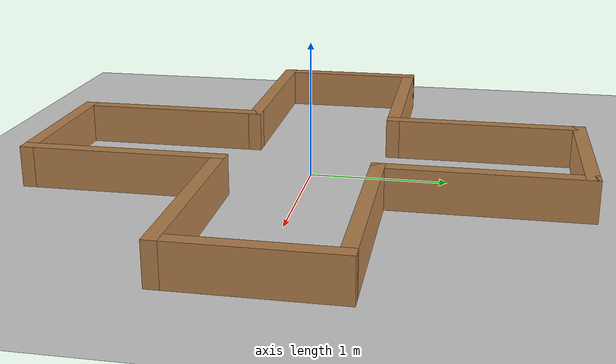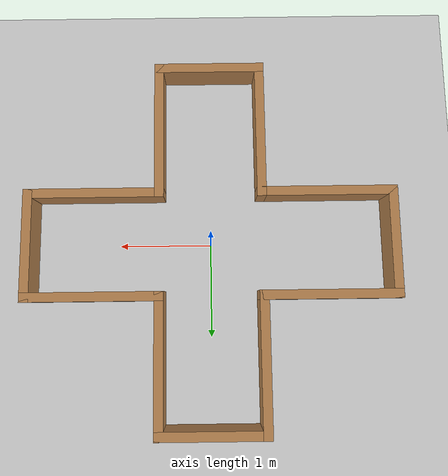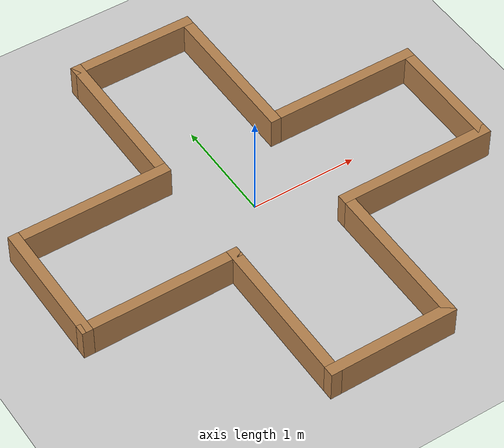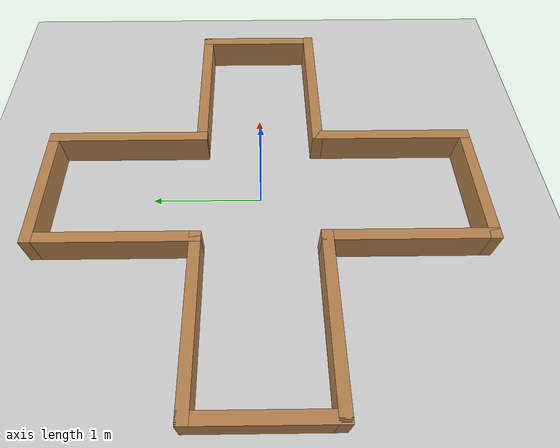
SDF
<sdf version='1.7'>
  <world name='default'>
    <!-- A global light source -->
    <include>
      <uri>model://sun</uri>
    </include>

    <!-- A ground plane -->
    <include>
      <uri>model://ground_plane</uri>
    </include>

    <physics type="ode">
      <real_time_update_rate>0.0</real_time_update_rate>
      <max_step_size>0.003</max_step_size>
      <ode>
        <solver>
          <type>quick</type>
          <iters>150</iters>
          <precon_iters>0</precon_iters>
          <sor>1.400000</sor>
          <use_dynamic_moi_rescaling>1</use_dynamic_moi_rescaling>
        </solver>
        <constraints>
          <cfm>0.00001</cfm>
          <erp>0.2</erp>
          <contact_max_correcting_vel>2000.000000</contact_max_correcting_vel>
          <contact_surface_layer>0.01000</contact_surface_layer>
        </constraints>
      </ode>
    </physics>

    <!-- Load model -->
    <model name='world'>
      <include>
        <uri>model://new_stage_cross</uri>
        <pose>0 0.85 0 0 0 0</pose>
      </include>
    </model>

    <scene>
      <ambient>0.4 0.4 0.4 1</ambient>
      <background>0.7 0.7 0.7 1</background>
      <shadows>false</shadows>
    </scene>

    <gui fullscreen='0'>
      <camera name='user_camera'>
        <pose>-1.58359 -3.62535 12.9428 -0 1.3378 1.58423</pose>
        <view_controller>orbit</view_controller>
        <projection_type>perspective</projection_type>
      </camera>
    </gui>
  </world>
</sdf>

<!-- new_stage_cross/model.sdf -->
<sdf version='1.7'>
  <model name='new_stage_cross'>
    <pose>-0.38 -2.845 0 0 -0 0</pose>
    <link name='Wall_0'>
      <collision name='Wall_0_Collision'>
        <geometry>
          <box>
            <size>1.2 0.1 0.3</size>
          </box>
        </geometry>
        <pose>0 0 0.15 0 -0 0</pose>
      </collision>
      <visual name='Wall_0_Visual'>
        <pose>0 0 0.15 0 -0 0</pose>
        <geometry>
          <box>
            <size>1.2 0.1 0.3</size>
          </box>
        </geometry>
        <material>
          <script>
            <uri>file://media/materials/scripts/gazebo.material</uri>
            <name>Gazebo/Wood</name>
          </script>
          <ambient>1 0.764706 0.305882 1</ambient>
        </material>
        <meta>
          <layer>0</layer>
        </meta>
      </visual>
      <pose>0 1.105 0 0 -0 0</pose>
    </link>
    <link name='Wall_10'>
      <collision name='Wall_10_Collision'>
        <geometry>
          <box>
            <size>1.5 0.1 0.3</size>
          </box>
        </geometry>
        <pose>0 0 0.15 0 -0 0</pose>
      </collision>
      <visual name='Wall_10_Visual'>
        <pose>0 0 0.15 0 -0 0</pose>
        <geometry>
          <box>
            <size>1.5 0.1 0.3</size>
          </box>
        </geometry>
        <material>
          <script>
            <uri>file://media/materials/scripts/gazebo.material</uri>
            <name>Gazebo/Wood</name>
          </script>
          <ambient>1 1 1 1</ambient>
        </material>
        <meta>
          <layer>0</layer>
        </meta>
      </visual>
      <pose>1.25 -1.395 0 0 -0 3.14159</pose>
    </link>
    <link name='Wall_12'>
      <collision name='Wall_12_Collision'>
        <geometry>
          <box>
            <size>1.5 0.1 0.3</size>
          </box>
        </geometry>
        <pose>0 0 0.15 0 -0 0</pose>
      </collision>
      <visual name='Wall_12_Visual'>
        <pose>0 0 0.15 0 -0 0</pose>
        <geometry>
          <box>
            <size>1.5 0.1 0.3</size>
          </box>
        </geometry>
        <material>
          <script>
            <uri>file://media/materials/scripts/gazebo.material</uri>
            <name>Gazebo/Wood</name>
          </script>
          <ambient>1 1 1 1</ambient>
        </material>
        <meta>
          <layer>0</layer>
        </meta>
      </visual>
      <pose>0.55 -2.095 0 0 -0 -1.5708</pose>
    </link>
    <link name='Wall_14'>
      <collision name='Wall_14_Collision'>
        <geometry>
          <box>
            <size>1.2 0.1 0.3</size>
          </box>
        </geometry>
        <pose>0 0 0.15 0 -0 0</pose>
      </collision>
      <visual name='Wall_14_Visual'>
        <pose>0 0 0.15 0 -0 0</pose>
        <geometry>
          <box>
            <size>1.2 0.1 0.3</size>
          </box>
        </geometry>
        <material>
          <script>
            <uri>file://media/materials/scripts/gazebo.material</uri>
            <name>Gazebo/Wood</name>
          </script>
          <ambient>1 0.764706 0.305882 1</ambient>
        </material>
        <meta>
          <layer>0</layer>
        </meta>
      </visual>
      <pose>0 -2.795 0 0 -0 3.14159</pose>
    </link>
    <link name='Wall_16'>
      <collision name='Wall_16_Collision'>
        <geometry>
          <box>
            <size>1.5 0.1 0.3</size>
          </box>
        </geometry>
        <pose>0 0 0.15 0 -0 0</pose>
      </collision>
      <visual name='Wall_16_Visual'>
        <pose>0 0 0.15 0 -0 0</pose>
        <geometry>
          <box>
            <size>1.5 0.1 0.3</size>
          </box>
        </geometry>
        <material>
          <script>
            <uri>file://media/materials/scripts/gazebo.material</uri>
            <name>Gazebo/Wood</name>
          </script>
          <ambient>1 0.764706 0.305882 1</ambient>
        </material>
        <meta>
          <layer>0</layer>
        </meta>
      </visual>
      <pose>-0.55 -2.095 0 0 -0 1.5708</pose>
    </link>
    <link name='Wall_18'>
      <collision name='Wall_18_Collision'>
        <geometry>
          <box>
            <size>1.5 0.1 0.3</size>
          </box>
        </geometry>
        <pose>0 0 0.15 0 -0 0</pose>
      </collision>
      <visual name='Wall_18_Visual'>
        <pose>0 0 0.15 0 -0 0</pose>
        <geometry>
          <box>
            <size>1.5 0.1 0.3</size>
          </box>
        </geometry>
        <material>
          <script>
            <uri>file://media/materials/scripts/gazebo.material</uri>
            <name>Gazebo/Wood</name>
          </script>
          <ambient>1 0.764706 0.305882 1</ambient>
        </material>
        <meta>
          <layer>0</layer>
        </meta>
      </visual>
      <pose>-1.25 -1.395 0 0 -0 3.14159</pose>
    </link>
    <link name='Wall_2'>
      <collision name='Wall_2_Collision'>
        <geometry>
          <box>
            <size>1.5 0.1 0.3</size>
          </box>
        </geometry>
        <pose>0 0 0.15 0 -0 0</pose>
      </collision>
      <visual name='Wall_2_Visual'>
        <pose>0 0 0.15 0 -0 0</pose>
        <geometry>
          <box>
            <size>1.5 0.1 0.3</size>
          </box>
        </geometry>
        <material>
          <script>
            <uri>file://media/materials/scripts/gazebo.material</uri>
            <name>Gazebo/Wood</name>
          </script>
          <ambient>1 0.764706 0.305882 1</ambient>
        </material>
        <meta>
          <layer>0</layer>
        </meta>
      </visual>
      <pose>-0.55 0.405 0 0 -0 -1.5708</pose>
    </link>
    <link name='Wall_20'>
      <collision name='Wall_20_Collision'>
        <geometry>
          <box>
            <size>1.2 0.1 0.3</size>
          </box>
        </geometry>
        <pose>0 0 0.15 0 -0 0</pose>
      </collision>
      <visual name='Wall_20_Visual'>
        <pose>0 0 0.15 0 -0 0</pose>
        <geometry>
          <box>
            <size>1.2 0.1 0.3</size>
          </box>
        </geometry>
        <material>
          <script>
            <uri>file://media/materials/scripts/gazebo.material</uri>
            <name>Gazebo/Wood</name>
          </script>
          <ambient>1 0.764706 0.305882 1</ambient>
        </material>
        <meta>
          <layer>0</layer>
        </meta>
      </visual>
      <pose>-1.95 -0.845 0 0 -0 1.5708</pose>
    </link>
    <link name='Wall_22'>
      <collision name='Wall_22_Collision'>
        <geometry>
          <box>
            <size>1.5 0.1 0.3</size>
          </box>
        </geometry>
        <pose>0 0 0.15 0 -0 0</pose>
      </collision>
      <visual name='Wall_22_Visual'>
        <pose>0 0 0.15 0 -0 0</pose>
        <geometry>
          <box>
            <size>1.5 0.1 0.3</size>
          </box>
        </geometry>
        <material>
          <script>
            <uri>file://media/materials/scripts/gazebo.material</uri>
            <name>Gazebo/Wood</name>
          </script>
          <ambient>1 0.764706 0.305882 1</ambient>
        </material>
        <meta>
          <layer>0</layer>
        </meta>
      </visual>
      <pose>-1.25 -0.295 0 0 -0 0</pose>
    </link>
    <link name='Wall_4'>
      <collision name='Wall_4_Collision'>
        <geometry>
          <box>
            <size>1.5 0.1 0.3</size>
          </box>
        </geometry>
        <pose>0 0 0.15 0 -0 0</pose>
      </collision>
      <visual name='Wall_4_Visual'>
        <pose>0 0 0.15 0 -0 0</pose>
        <geometry>
          <box>
            <size>1.5 0.1 0.3</size>
          </box>
        </geometry>
        <material>
          <script>
            <uri>file://media/materials/scripts/gazebo.material</uri>
            <name>Gazebo/Wood</name>
          </script>
          <ambient>1 0.764706 0.305882 1</ambient>
        </material>
        <meta>
          <layer>0</layer>
        </meta>
      </visual>
      <pose>0.55 0.405 0 0 -0 -1.5708</pose>
    </link>
    <link name='Wall_6'>
      <collision name='Wall_6_Collision'>
        <geometry>
          <box>
            <size>1.5 0.1 0.3</size>
          </box>
        </geometry>
        <pose>0 0 0.15 0 -0 0</pose>
      </collision>
      <visual name='Wall_6_Visual'>
        <pose>0 0 0.15 0 -0 0</pose>
        <geometry>
          <box>
            <size>1.5 0.1 0.3</size>
          </box>
        </geometry>
        <material>
          <script>
            <uri>file://media/materials/scripts/gazebo.material</uri>
            <name>Gazebo/Wood</name>
          </script>
          <ambient>1 0.764706 0.305882 1</ambient>
        </material>
        <meta>
          <layer>0</layer>
        </meta>
      </visual>
      <pose>1.25 -0.295 0 0 -0 0</pose>
    </link>
    <link name='Wall_8'>
      <collision name='Wall_8_Collision'>
        <geometry>
          <box>
            <size>1.2 0.1 0.3</size>
          </box>
        </geometry>
        <pose>0 0 0.15 0 -0 0</pose>
      </collision>
      <visual name='Wall_8_Visual'>
        <pose>0 0 0.15 0 -0 0</pose>
        <geometry>
          <box>
            <size>1.2 0.1 0.3</size>
          </box>
        </geometry>
        <material>
          <script>
            <uri>file://media/materials/scripts/gazebo.material</uri>
            <name>Gazebo/Wood</name>
          </script>
          <ambient>1 0.764706 0.305882 1</ambient>
        </material>
        <meta>
          <layer>0</layer>
        </meta>
      </visual>
      <pose>1.95 -0.845 0 0 -0 -1.5708</pose>
    </link>
    <static>1</static>
  </model>
</sdf>
